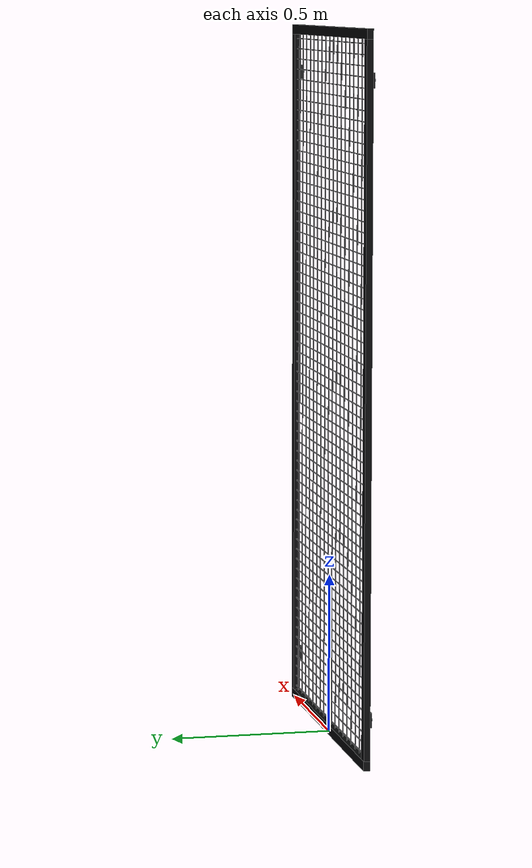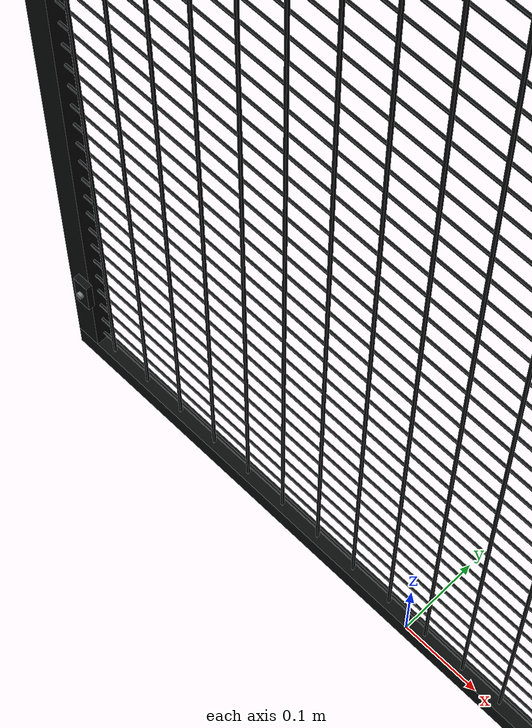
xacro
<?xml version="1.0"?>
<!-- CC0. Origin: panel bottom center; botrail supplies its floor-gap offset.
     Fixed 30 x 20 mm frame, selected mesh is NOT stretched to fit a bay. -->
<robot xmlns:xacro="http://www.ros.org/wiki/xacro" name="x-guard-classic-panel">
  <xacro:include filename="../../equipment-common/visual/primitives.xacro"/>
  <xacro:arg name="width" default="1.0"/><xacro:arg name="height" default="2.2"/>
  <xacro:arg name="handle" default="0"/>
  <xacro:property name="w" value="$(arg width)"/><xacro:property name="h" value="$(arg height)"/>
  <material name="black"><color rgba="0.035 0.037 0.040 1"/></material>
  <material name="steel"><color rgba="0.48 0.50 0.53 1"/></material>
  <link name="root"/>
  <xacro:box name="frame_top" size="${w} 0.02 0.03" xyz="0 0 ${h-0.015}" mat="black"/>
  <xacro:box name="frame_bottom" size="${w} 0.02 0.03" xyz="0 0 0.015" mat="black"/>
  <xacro:box name="frame_left" size="0.03 0.02 ${h-0.06}" xyz="${-w/2+0.015} 0 ${h/2}" mat="black"/>
  <xacro:box name="frame_right" size="0.03 0.02 ${h-0.06}" xyz="${w/2-0.015} 0 ${h/2}" mat="black"/>
  <xacro:mesh name="wire_grid" file="../meshes/grid-${int(round(w*1000))}-${int(round(h*1000))}.stl"
              xyz="0 0 ${h/2}" mat="black"/>
  <!-- Factory-fixed bracket silhouettes; their hole spacing is not dimensioned. -->
  <xacro:macro name="bracket" params="side z suffix">
    <xacro:box name="bracket_${suffix}" size="0.02 0.008 0.045" xyz="${side*(w/2-0.025)} -0.014 ${z}" mat="black"/>
    <xacro:cylinder name="fixing_${suffix}" radius="0.004" length="0.004"
                    xyz="${side*(w/2-0.025)} -0.020 ${z}" rpy="${pi/2} 0 0" mat="steel"/>
  </xacro:macro>
  <xacro:bracket side="-1" z="0.15" suffix="lb"/><xacro:bracket side="1" z="0.15" suffix="rb"/>
  <xacro:bracket side="-1" z="${h-0.15}" suffix="lt"/><xacro:bracket side="1" z="${h-0.15}" suffix="rt"/>
  <!-- D10 hinged opening concept; handle/lock are separate purchases, inferred
       presentation geometry, not a simulated or certified interlock. -->
  <xacro:if value="${$(arg handle) &gt; 0}">
    <xacro:cylinder name="hinge_lower" radius="0.010" length="0.07" xyz="${-w/2+0.015} -0.025 0.2" rpy="0 0 0" mat="steel"/>
    <xacro:cylinder name="hinge_upper" radius="0.010" length="0.07" xyz="${-w/2+0.015} -0.025 ${h-0.2}" rpy="0 0 0" mat="steel"/>
    <xacro:box name="latch" size="0.038 0.025 0.12" xyz="${w/2-0.04} -0.027 ${h/2}" mat="black"/>
    <xacro:box name="handle" size="0.07 0.018 0.02" xyz="${w/2-0.075} -0.047 ${h/2}" mat="steel"/>
  </xacro:if>
</robot>

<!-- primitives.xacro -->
<!-- CC0. Visual-only primitives, each with a stable removable resident name. -->
<robot xmlns:xacro="http://www.ros.org/wiki/xacro">
  <xacro:macro name="box" params="name size xyz mat">
    <link name="${name}"><visual><origin xyz="${xyz}"/>
      <geometry><box size="${size}"/></geometry><material name="${mat}"/>
    </visual></link>
    <joint name="j_${name}" type="fixed"><parent link="root"/><child link="${name}"/></joint>
  </xacro:macro>
  <xacro:macro name="cylinder" params="name radius length xyz rpy mat">
    <link name="${name}"><visual><origin xyz="${xyz}" rpy="${rpy}"/>
      <geometry><cylinder radius="${radius}" length="${length}"/></geometry><material name="${mat}"/>
    </visual></link>
    <joint name="j_${name}" type="fixed"><parent link="root"/><child link="${name}"/></joint>
  </xacro:macro>
  <xacro:macro name="mesh" params="name file xyz mat">
    <link name="${name}"><visual><origin xyz="${xyz}"/>
      <geometry><mesh filename="${file}"/></geometry><material name="${mat}"/>
    </visual></link>
    <joint name="j_${name}" type="fixed"><parent link="root"/><child link="${name}"/></joint>
  </xacro:macro>
</robot>
